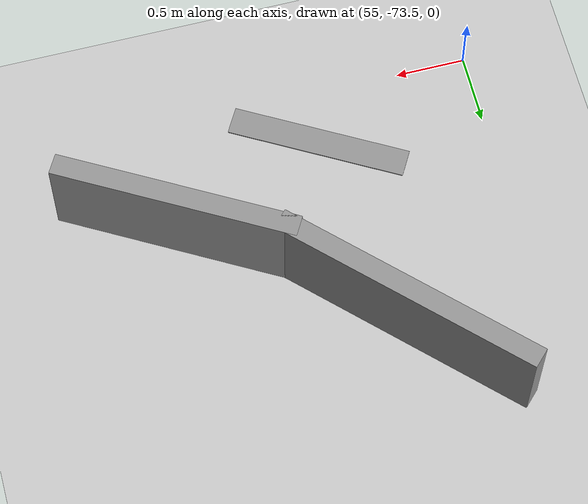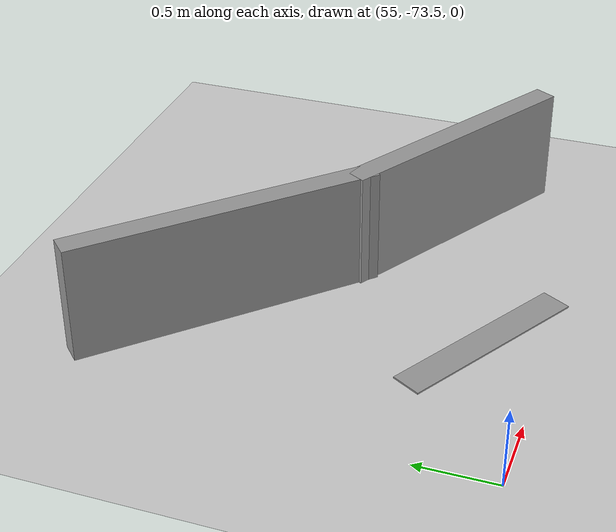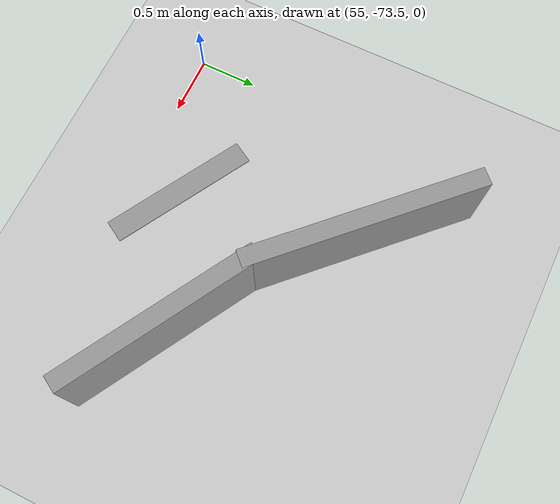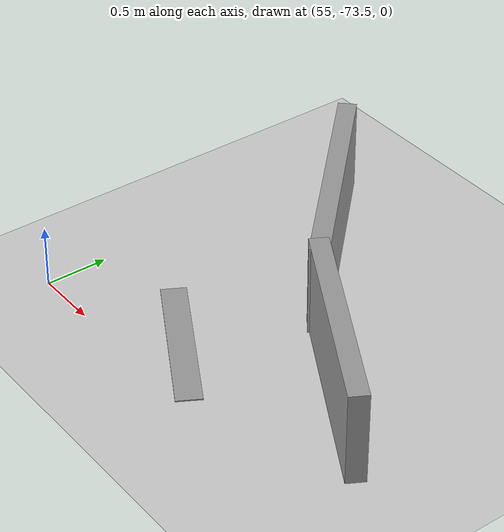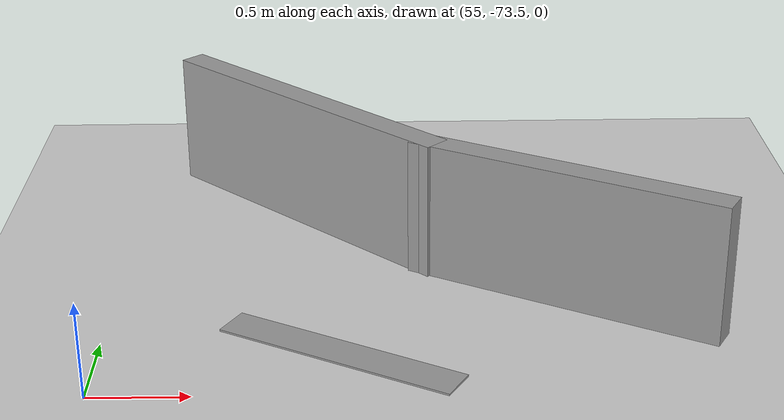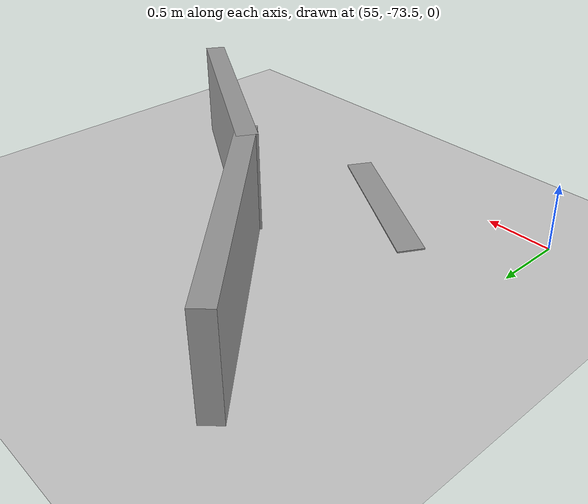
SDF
<sdf version="1.6">
 <world name="default">
  <model name="ground_plane">
   <static>1</static>
   <link name="link">
    <collision name="collision">
     <geometry><plane><normal>0 0 1</normal><size>100 100</size></plane></geometry>
     <surface>
      <contact><collide_bitmask>65535</collide_bitmask></contact>
      <friction><ode><mu>100</mu><mu2>50</mu2></ode></friction>
     </surface>
    </collision>
    <visual name="visual">
     <cast_shadows>0</cast_shadows>
     <geometry><plane><normal>0 0 1</normal><size>100 100</size></plane></geometry>
     <material>
      <script><uri>file://media/materials/scripts/gazebo.material</uri><name>Gazebo/Grey</name></script>
     </material>
    </visual>
   </link>
  </model>
  <model name="GercekDuvarSeritKoyu1">
   <link name="Wall_201">
    <pose>16.8421 -3.96709 0 0 -0 0.78578</pose>
    <inertial>
     <mass>1</mass>
     <inertia><ixx>1</ixx><ixy>0</ixy><ixz>0</ixz><iyy>1</iyy><iyz>0</iyz><izz>1</izz></inertia>
    </inertial>
    <visual name="Wall_201_Visual">
     <pose>0 0 0.375 0 -0 0</pose>
     <geometry><box><size>2 0.15 0.75</size></box></geometry>
     <material>
      <script><uri>file://media/materials/scripts/gazebo.material</uri><name>Gazebo/Grey</name></script>
      <ambient>0.5 0.5 0.5 1</ambient>
      <shader type="pixel"><normal_map>__default__</normal_map></shader>
      <diffuse>0.7 0.7 0.7 1</diffuse>
      <specular>0.01 0.01 0.01 1</specular>
      <emissive>0 0 0 1</emissive>
     </material>
     <meta><layer>0</layer></meta>
    </visual>
    <collision name="Wall_201_Collision">
     <pose>0 0 0.375 0 -0 0</pose>
     <geometry><box><size>2 0.15 0.75</size></box></geometry>
     <surface>
      <friction>
       <ode><mu>1</mu><mu2>1</mu2><fdir1>0 0 0</fdir1><slip1>0</slip1><slip2>0</slip2></ode>
       <torsional>
        <coefficient>1</coefficient>
        <patch_radius>0</patch_radius>
        <surface_radius>0</surface_radius>
        <use_patch_radius>1</use_patch_radius>
        <ode><slip>0</slip></ode>
       </torsional>
      </friction>
      <bounce><restitution_coefficient>0</restitution_coefficient><threshold>1e+06</threshold></bounce>
      <contact>
       <collide_without_contact>0</collide_without_contact>
       <collide_without_contact_bitmask>1</collide_without_contact_bitmask>
       <collide_bitmask>1</collide_bitmask>
       <ode>
        <soft_cfm>0</soft_cfm>
        <soft_erp>0.2</soft_erp>
        <kp>1e+13</kp>
        <kd>1</kd>
        <max_vel>0.01</max_vel>
        <min_depth>0</min_depth>
       </ode>
       <bullet>
        <split_impulse>1</split_impulse>
        <split_impulse_penetration_threshold>-0.01</split_impulse_penetration_threshold>
        <soft_cfm>0</soft_cfm>
        <soft_erp>0.2</soft_erp>
        <kp>1e+13</kp>
        <kd>1</kd>
       </bullet>
      </contact>
     </surface>
    </collision>
   </link>
   <link name="Wall_202">
    <pose>17.8961 -2.62009 0 0 -0 1.047</pose>
    <inertial>
     <mass>1</mass>
     <inertia><ixx>1</ixx><ixy>0</ixy><ixz>0</ixz><iyy>1</iyy><iyz>0</iyz><izz>1</izz></inertia>
    </inertial>
    <visual name="Wall_202_Visual">
     <pose>0 0 0.375 0 -0 0</pose>
     <geometry><box><size>1.75 0.15 0.75</size></box></geometry>
     <material>
      <script><uri>file://media/materials/scripts/gazebo.material</uri><name>Gazebo/Grey</name></script>
      <ambient>0.5 0.5 0.5 1</ambient>
      <shader type="pixel"><normal_map>__default__</normal_map></shader>
      <diffuse>0.7 0.7 0.7 1</diffuse>
      <specular>0.01 0.01 0.01 1</specular>
      <emissive>0 0 0 1</emissive>
     </material>
     <meta><layer>0</layer></meta>
    </visual>
    <collision name="Wall_202_Collision">
     <pose>0 0 0.375 0 -0 0</pose>
     <geometry><box><size>1.75 0.15 0.75</size></box></geometry>
     <surface>
      <friction>
       <ode><mu>1</mu><mu2>1</mu2><fdir1>0 0 0</fdir1><slip1>0</slip1><slip2>0</slip2></ode>
       <torsional>
        <coefficient>1</coefficient>
        <patch_radius>0</patch_radius>
        <surface_radius>0</surface_radius>
        <use_patch_radius>1</use_patch_radius>
        <ode><slip>0</slip></ode>
       </torsional>
      </friction>
      <bounce><restitution_coefficient>0</restitution_coefficient><threshold>1e+06</threshold></bounce>
      <contact>
       <collide_without_contact>0</collide_without_contact>
       <collide_without_contact_bitmask>1</collide_without_contact_bitmask>
       <collide_bitmask>1</collide_bitmask>
       <ode>
        <soft_cfm>0</soft_cfm>
        <soft_erp>0.2</soft_erp>
        <kp>1e+13</kp>
        <kd>1</kd>
        <max_vel>0.01</max_vel>
        <min_depth>0</min_depth>
       </ode>
       <bullet>
        <split_impulse>1</split_impulse>
        <split_impulse_penetration_threshold>-0.01</split_impulse_penetration_threshold>
        <soft_cfm>0</soft_cfm>
        <soft_erp>0.2</soft_erp>
        <kp>1e+13</kp>
        <kd>1</kd>
       </bullet>
      </contact>
     </surface>
    </collision>
   </link>
   <link name="Wall_533">
    <pose>18.4071 -3.76559 0 0 -0 1.04691</pose>
    <visual name="Wall_533_Visual">
     <pose>0 0 0.005 0 -0 0</pose>
     <geometry><box><size>1.29956 0.2 0.01</size></box></geometry>
     <material>
      <script><uri>file://media/materials/scripts/gazebo.material</uri><name>Gazebo/Grey</name></script>
      <ambient>1 1 1 1</ambient>
      <shader type="pixel"/>
     </material>
     <meta><layer>0</layer></meta>
    </visual>
    <collision name="Wall_533_Collision">
     <pose>0 0 0.005 0 -0 0</pose>
     <geometry><box><size>1.29956 0.2 0.01</size></box></geometry>
     <surface>
      <friction>
       <ode><mu>1</mu><mu2>1</mu2><fdir1>0 0 0</fdir1><slip1>0</slip1><slip2>0</slip2></ode>
       <torsional>
        <coefficient>1</coefficient>
        <patch_radius>0</patch_radius>
        <surface_radius>0</surface_radius>
        <use_patch_radius>1</use_patch_radius>
        <ode><slip>0</slip></ode>
       </torsional>
      </friction>
      <bounce><restitution_coefficient>0</restitution_coefficient><threshold>1e+06</threshold></bounce>
      <contact>
       <collide_without_contact>0</collide_without_contact>
       <collide_without_contact_bitmask>1</collide_without_contact_bitmask>
       <collide_bitmask>1</collide_bitmask>
       <ode>
        <soft_cfm>0</soft_cfm>
        <soft_erp>0.2</soft_erp>
        <kp>1e+13</kp>
        <kd>1</kd>
        <max_vel>0.01</max_vel>
        <min_depth>0</min_depth>
       </ode>
       <bullet>
        <split_impulse>1</split_impulse>
        <split_impulse_penetration_threshold>-0.01</split_impulse_penetration_threshold>
        <soft_cfm>0</soft_cfm>
        <soft_erp>0.2</soft_erp>
        <kp>1e+13</kp>
        <kd>1</kd>
       </bullet>
      </contact>
     </surface>
    </collision>
   </link>
   <static>1</static>
   <pose>59.9324 -54.7034 -0 0 0 -1.5695</pose>
  </model>
 </world>
</sdf>
